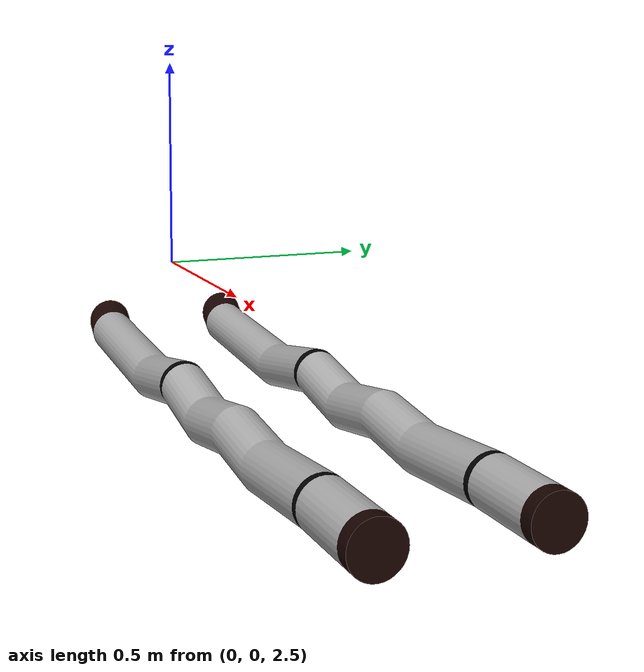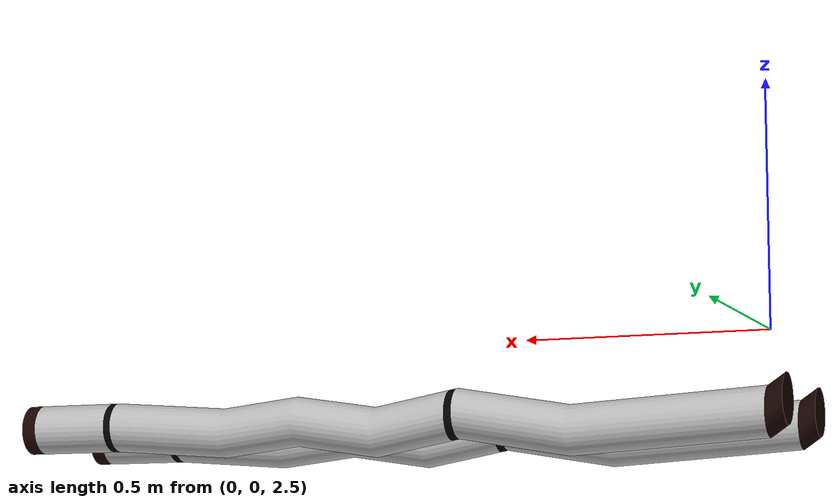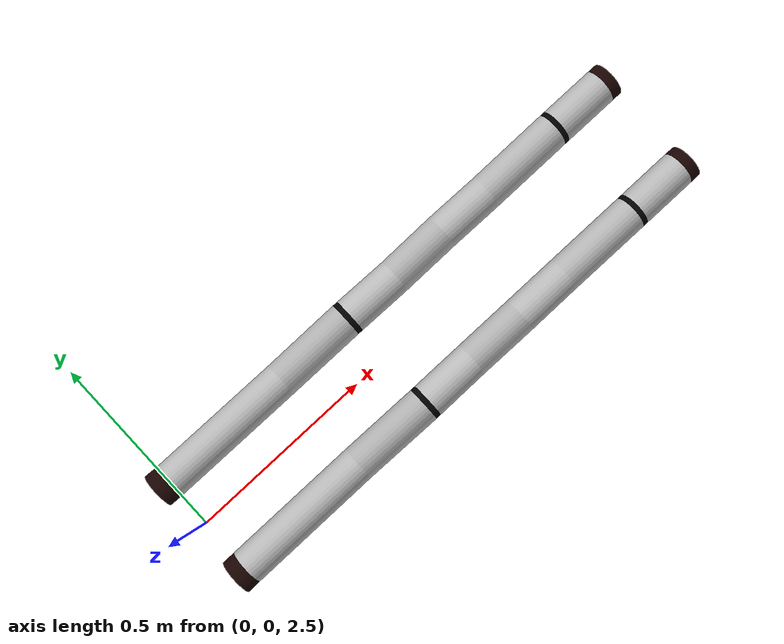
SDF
<?xml version="1.0" ?>
<sdf version='1.5'>
<model name='rubber_wire'>
<static>true</static>
<link name="link">
   <pose frame=''>0.15 -0.15 2.35 0 1.57 0</pose>
  <visual name='visual'>
    <cast_shadows>false</cast_shadows>
    <geometry>
      <mesh>
        <scale>1.0 1.0 1.0</scale>
        <uri>model://rubber_wire/untitled.dae</uri>
      </mesh>
    </geometry>
  </visual>
</link>
<link name="link2">
   <pose frame=''>0.15 0.15 2.35 0 1.57 0</pose>
  <visual name='visual2'>
    <cast_shadows>false</cast_shadows>
    <geometry>
      <mesh>
        <scale>1.0 1.0 1.0</scale>
        <uri>model://rubber_wire/untitled.dae</uri>
      </mesh>
    </geometry>
  </visual>
</link>
</model>
</sdf>
